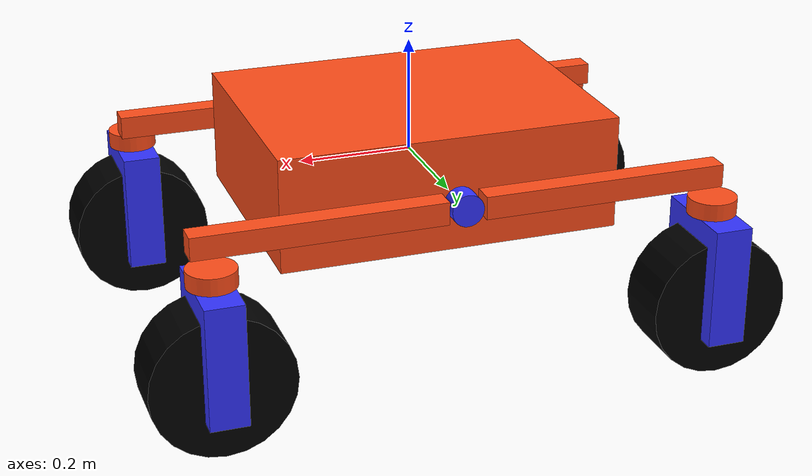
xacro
<?xml version="1.0"?>
<robot xmlns:xacro="http://www.ros.org/wiki/xacro"  name="robot">
    <xacro:arg name="is_simulation" default="false"/>

    <!-- DISABLED (false) / ENABLED (true) -->
    <!-- core subsystem can't be disabled! -->

    <!-- utilities -->
    <xacro:include filename="utils/inertial_macros.xacro" />
    <xacro:include filename="utils/materials.xacro" />

    <!-- simulation specific global stuff -->
    <xacro:if value="$(arg is_simulation)">
        <xacro:include filename="utils/gazebo_plugins.xacro" />
    </xacro:if>

    <xacro:include filename="core/core.xacro" />

</robot>

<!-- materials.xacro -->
<robot xmlns:xacro="http://www.ros.org/wiki/xacro" >

    <material name="white">
        <color rgba="1 1 1 1" />
    </material>

    <material name="orange">
        <color rgba="1 0.3 0.1 1"/>
    </material>

    <material name="blue">
        <color rgba="0.2 0.2 1 1"/>
    </material>

    <material name="black">
        <color rgba="0 0 0 1"/>
    </material>

    <material name="red">
        <color rgba="1 0 0 1"/>
    </material>

</robot>

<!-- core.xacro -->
<robot xmlns:xacro="http://www.ros.org/wiki/xacro" >
    <xacro:property name="chassis_length" value="0.600"/>
    <xacro:property name="chassis_width" value="0.450"/>
    <xacro:property name="chassis_height" value="0.200"/>
    <xacro:property name="chassis_mass" value="10.0"/>

    <!-- BASE LINK -->

    <link name="base_link">
    </link>

    <!-- CHASSIS LINK -->

    <joint name="chassis_joint" type="fixed">
        <parent link="base_link"/>
        <child link="chassis"/>
        <origin xyz="0 0 0"/>
    </joint>

    <link name="chassis">
        <visual>
            <origin xyz="0 0 0"/>
            <geometry>
                <box size="${chassis_length} ${chassis_width} ${chassis_height}"/>
            </geometry>
            <material name="orange"/>
        </visual>
        <xacro:inertial_box mass="15" x="${chassis_length}" y="${chassis_width}" z="${chassis_height}">
            <origin xyz="0 0 0" rpy="0 0 0"/>
        </xacro:inertial_box>
    </link>

    <gazebo reference="chassis">
        <material>Gazebo/Orange</material>
    </gazebo>

    <xacro:include filename="drivebase.xacro" />

    <xacro:if value="$(arg is_simulation)">
        <xacro:include filename="ros2control_gazebo.xacro" />
    </xacro:if>

    <xacro:unless value="$(arg is_simulation)">
        <xacro:include filename="ros2control.xacro" />
    </xacro:unless>
</robot>

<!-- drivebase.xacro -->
<robot xmlns:xacro="http://www.ros.org/wiki/xacro" >
    <xacro:include filename="db_helpers.xacro" />

    <xacro:property name="diff_bar_bearing_seat_width" value="0.04"/>
    <xacro:property name="diff_bar_length" value="0.600"/>

    <xacro:property name="wheel_radius" value="${0.245/2}"/>
    <xacro:property name="wheel_thickness" value="0.11"/>
    <xacro:property name="wheel_mass" value="0.05"/>
    <xacro:property name="wheel_offset_x" value="0.29"/>
    <xacro:property name="wheel_offset_y" value="0.4325"/>
    <xacro:property name="wheel_offset_z" value="2"/>

    <!-- LEFT SIDE STUFF -->
    <!-- TODO: Fix effort and velocity limits. Current values are arbitrary. -->
    <joint name="ldb_pivot_joint" type="revolute">
        <parent link="chassis"/>
        <child link="ldb_pivot"/>
        <origin xyz="0 ${chassis_width/2 + 0.014 + diff_bar_bearing_seat_width} 0" rpy="-${pi/2} 0 0" />
        <axis xyz="0 0 1"/>
        <limit lower="${-pi/6}" upper="${pi/6}" effort="80.0" velocity="10.0"/>
    </joint>

    <link name="ldb_pivot">
        <visual>
            <geometry>
                <cylinder radius="${0.056/2}" length="${diff_bar_bearing_seat_width}"/>
            </geometry>
            <material name="blue"/>
        </visual>
    </link>

    <xacro:db_module_corner prefix="db_fl" isrear="1" parent="ldb_pivot"/>
    <xacro:db_module_corner prefix="db_bl" isrear="-1" parent="ldb_pivot"/>

    <!-- RIGHT SIDE STUFF -->
    <!-- TODO: Fix effort and velocity limits -->
    <joint name="rdb_pivot_joint" type="continuous">
        <parent link="chassis"/>
        <child link="rdb_pivot"/>
        <origin xyz="0 -${chassis_width/2 + 0.014 + diff_bar_bearing_seat_width} 0" rpy="-${pi/2} 0 0" />
        <axis xyz="0 0 1"/>
        <limit lower="${-pi/6}" upper="${pi/6}" effort="0.0" velocity="0.0"/>
    </joint>

    <link name="rdb_pivot">
        <visual>
            <geometry>
                <cylinder radius="${0.056/2}" length="${diff_bar_bearing_seat_width}"/>
            </geometry>
            <material name="blue"/>
        </visual>
    </link>

    <xacro:db_module_corner prefix="db_fr" isrear="1" flip_x="-1" parent="rdb_pivot"/>
    <xacro:db_module_corner prefix="db_br" isrear="-1" flip_x="-1" parent="rdb_pivot"/>

</robot>

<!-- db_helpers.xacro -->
<robot xmlns:xacro="http://www.ros.org/wiki/xacro" >
    <!-- flipped = -1, normal = 1 for flip_x and isrear -->
	<xacro:macro name="db_module_corner" params="prefix parent flip_x:=1 isrear:=1">
	<!-- This is the pivot point -->
        <joint name="${prefix}_joint" type="fixed">
            <parent link="${parent}"/>
            <child link="${prefix}"/>
            <origin xyz="${isrear*(diff_bar_length/2 + 0.056/2)} 0 0" rpy="0 0 0" />
        </joint>

        <!-- This is the "arms" connected to the steering joint -->
        <joint name="${prefix}_bar_smount_joint" type="fixed">
            <parent link="${prefix}"/>
            <child link="${prefix}_smount"/>
            <origin xyz="${isrear*0.865/8} ${0.04} ${(0.04)*flip_x}" rpy="${pi/2} 0 0" />
        </joint>

        <!-- This is the steering joint -->
        <joint name="${prefix}_smount_fork_joint" type="revolute">
            <parent link="${prefix}_smount"/>
            <child link="${prefix}_wheel_fork"/>
	    <origin xyz="${0} ${0} ${-0.213/2 - 0.03/2}" rpy="0 0 0"/>
            <axis xyz="0 0 1"/>
            <limit lower="${-pi/2}" upper="${pi/2}" effort="40.0" velocity="12.8"/>
        </joint>

        <!-- This is the actual wheel -->
        <joint name="${prefix}_fork_tyre_joint" type="continuous">
            <parent link="${prefix}_wheel_fork"/>
            <child link="${prefix}_tyre"/>
            <origin xyz="0 0 ${-0.05}" rpy="${-pi/2} 0 0" />
            <axis xyz="0 0 1"/>
        </joint>

        <!-- ALL LINKS BELOW THIS LINE -->
	<!-- arm -->
        <link name="${prefix}">
            <visual>
                <geometry>
			<box size="${0.865/2} ${diff_bar_bearing_seat_width} ${diff_bar_bearing_seat_width}"/>
		</geometry>
		<origin xyz="${isrear*-0.865/1.5} 0 0" rpy="0 0 0"/>
                <material name="orange"/>
            </visual>
	    <xacro:inertial_box mass="2" x="${0.865/2}" y="${diff_bar_bearing_seat_width}" z="${diff_bar_bearing_seat_width}">
		    <origin xyz="${isrear*-0.865/1.5} 0 0" rpy="0 0 0"/>
            </xacro:inertial_box>
        </link>

        <!-- Steering motor mount -->
        <link name="${prefix}_smount">
            <visual>
                <geometry>
                    <cylinder radius="${0.0425}" length="0.03"/>
                </geometry>
                <material name="orange"/>
            </visual>
        </link>

        <!-- The actual steering joint -->
        <link name="${prefix}_wheel_fork">
            <visual>
                <geometry>
                    <box size="0.066 0.170 0.213"/>
                </geometry>
                <material name="blue"/>
            </visual>
            <xacro:inertial_box mass="1" x="0.066" y="0.170" z="0.213">
                <origin xyz="0 0 0" rpy="0 0 0"/>
            </xacro:inertial_box>
        </link>

        <!-- Wheel -->
        <link name="${prefix}_tyre">
            <visual>
                <geometry>
			<cylinder radius="${wheel_radius}" length="${wheel_thickness}"/>
                </geometry>
                <material name="black"/>
            </visual>
            <collision>
                <geometry>
                    <sphere radius="${wheel_radius}"/>
                </geometry>
            </collision>
            <xacro:inertial_sphere mass="2.5" radius="${0.125}" >
                <origin xyz="0 0 0" rpy="0 0 0"/>
            </xacro:inertial_sphere>
        </link>
    </xacro:macro>
</robot>
